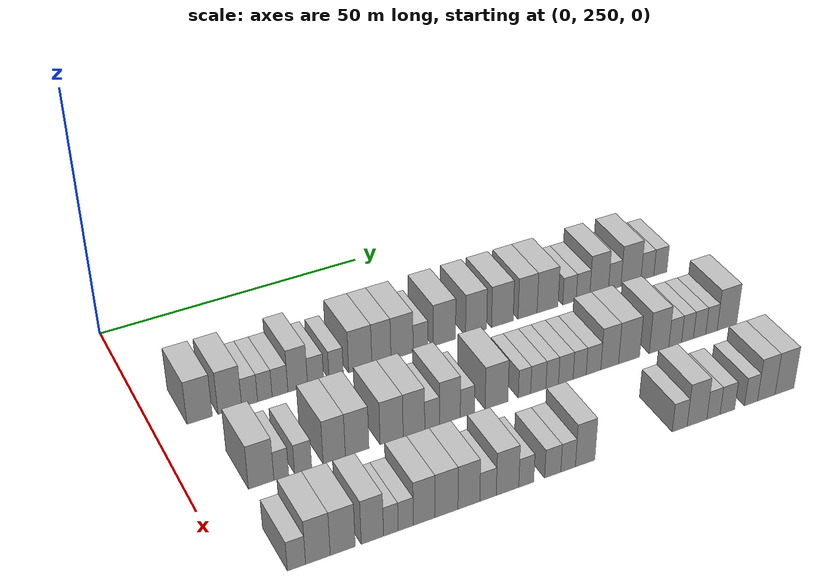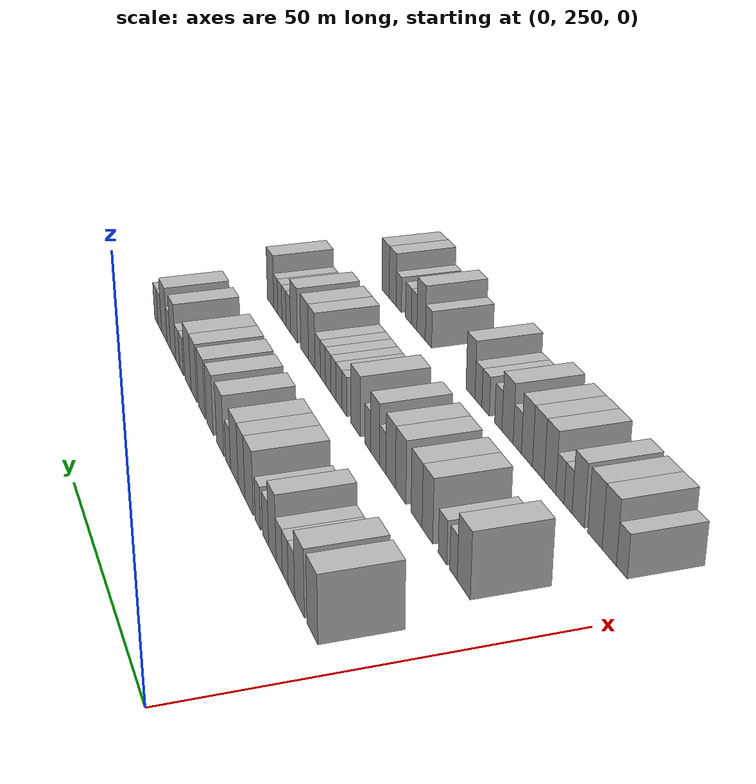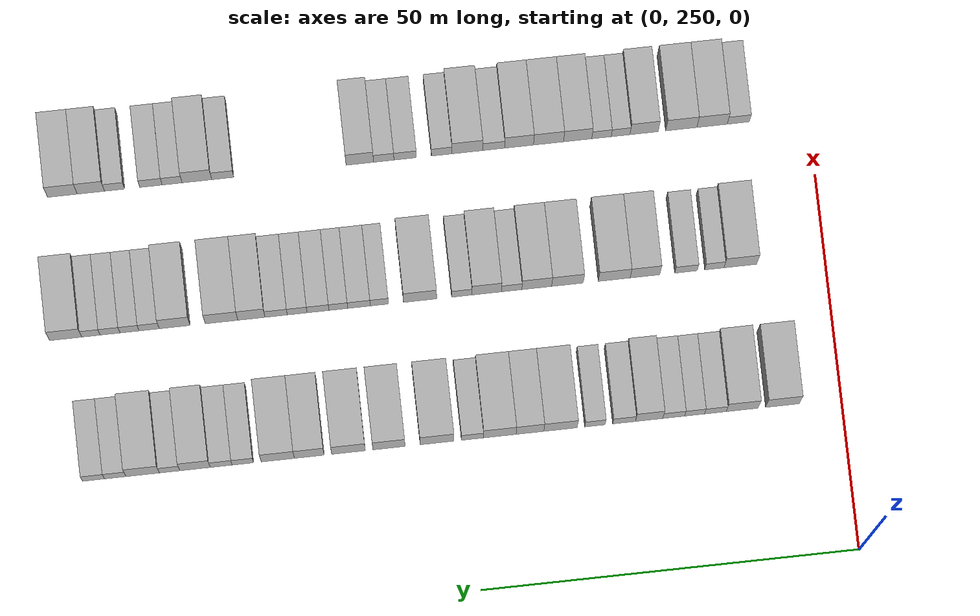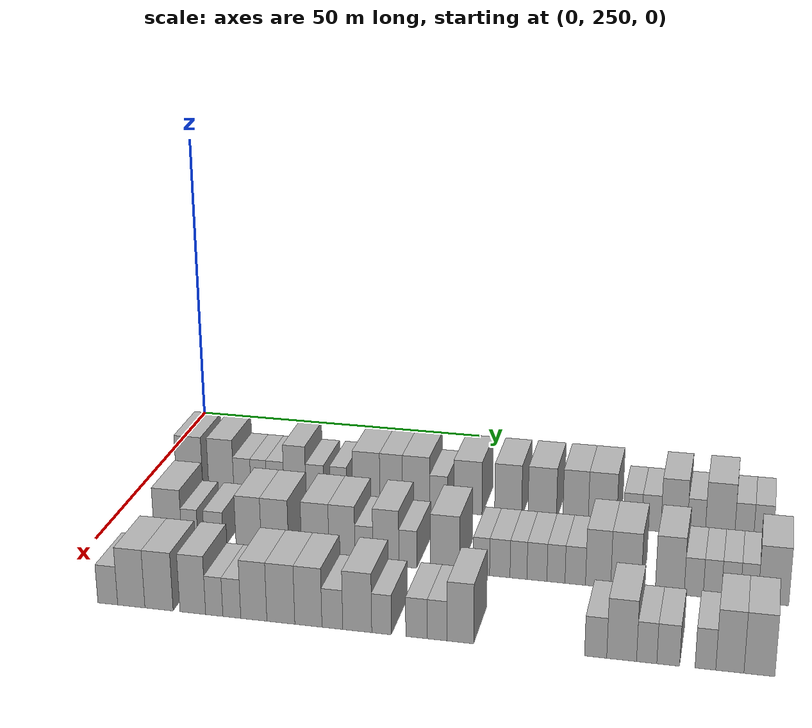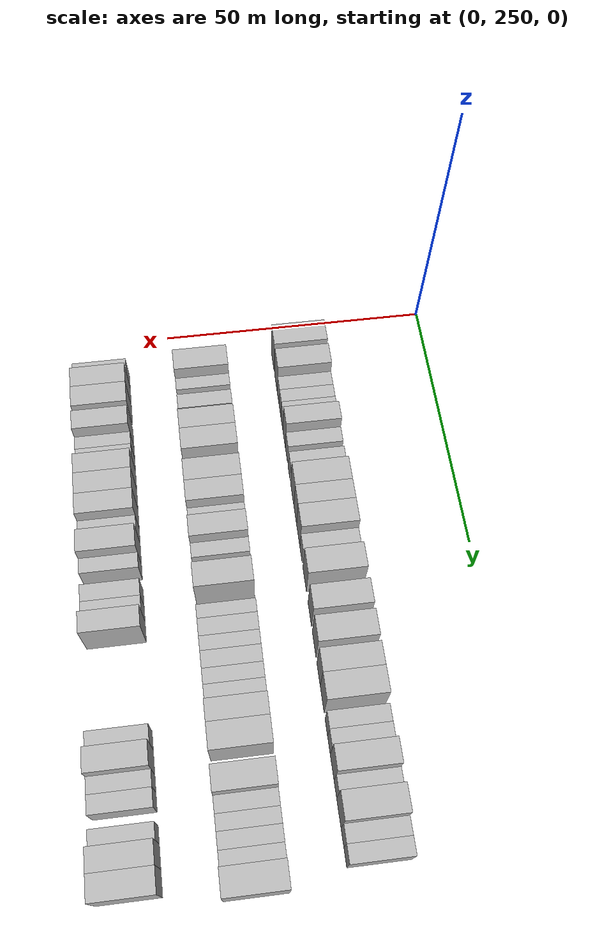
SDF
<sdf version="1.6">
 <world name="default">
  <model name="building_152">
   <static>1</static>
   <pose>25.0000 257.8896 0 0.000000 0.000000 0.000000</pose>
   <link name="link">
    <pose>0 0 4.50 0 0 0</pose>
    <collision name="collision"><geometry><box><size>10.0000 4.4660 9.0000</size></box></geometry></collision>
    <visual name="visual">
     <cast_shadows>0</cast_shadows>
     <geometry><box><size>10.0000 4.4660 9.0000</size></box></geometry>
     <material>
      <script>
       <uri>model://HANNAS_wall/materials/scripts</uri>
       <uri>model://HANNAS_wall/materials/textures</uri>
       <name>vrc/HANNAS_wall</name>
      </script>
     </material>
    </visual>
   </link>
  </model>
  <model name="building_153">
   <static>1</static>
   <pose>25.0000 263.2380 0 0.000000 0.000000 0.000000</pose>
   <link name="link">
    <pose>0 0 4.50 0 0 0</pose>
    <collision name="collision"><geometry><box><size>10.0000 4.2309 9.0000</size></box></geometry></collision>
    <visual name="visual">
     <cast_shadows>0</cast_shadows>
     <geometry><box><size>10.0000 4.2309 9.0000</size></box></geometry>
     <material>
      <script>
       <uri>model://HANNAS_wall/materials/scripts</uri>
       <uri>model://HANNAS_wall/materials/textures</uri>
       <name>vrc/HANNAS_wall</name>
      </script>
     </material>
    </visual>
   </link>
  </model>
  <model name="building_154">
   <static>1</static>
   <pose>25.0000 266.7898 0 0.000000 0.000000 0.000000</pose>
   <link name="link">
    <pose>0 0 3.00 0 0 0</pose>
    <collision name="collision"><geometry><box><size>10.0000 2.8727 6.0000</size></box></geometry></collision>
    <visual name="visual">
     <cast_shadows>0</cast_shadows>
     <geometry><box><size>10.0000 2.8727 6.0000</size></box></geometry>
     <material>
      <script>
       <uri>model://HANNAS_wall/materials/scripts</uri>
       <uri>model://HANNAS_wall/materials/textures</uri>
       <name>vrc/HANNAS_wall</name>
      </script>
     </material>
    </visual>
   </link>
  </model>
  <model name="building_155">
   <static>1</static>
   <pose>25.0000 269.5417 0 0.000000 0.000000 0.000000</pose>
   <link name="link">
    <pose>0 0 3.00 0 0 0</pose>
    <collision name="collision"><geometry><box><size>10.0000 2.6310 6.0000</size></box></geometry></collision>
    <visual name="visual">
     <cast_shadows>0</cast_shadows>
     <geometry><box><size>10.0000 2.6310 6.0000</size></box></geometry>
     <material>
      <script>
       <uri>model://HANNAS_wall/materials/scripts</uri>
       <uri>model://HANNAS_wall/materials/textures</uri>
       <name>vrc/HANNAS_wall</name>
      </script>
     </material>
    </visual>
   </link>
  </model>
  <model name="building_156">
   <static>1</static>
   <pose>25.0000 272.3061 0 0.000000 0.000000 0.000000</pose>
   <link name="link">
    <pose>0 0 3.00 0 0 0</pose>
    <collision name="collision"><geometry><box><size>10.0000 2.8977 6.0000</size></box></geometry></collision>
    <visual name="visual">
     <cast_shadows>0</cast_shadows>
     <geometry><box><size>10.0000 2.8977 6.0000</size></box></geometry>
     <material>
      <script>
       <uri>model://HANNAS_wall/materials/scripts</uri>
       <uri>model://HANNAS_wall/materials/textures</uri>
       <name>vrc/HANNAS_wall</name>
      </script>
     </material>
    </visual>
   </link>
  </model>
  <model name="building_157">
   <static>1</static>
   <pose>25.0000 275.5672 0 0.000000 0.000000 0.000000</pose>
   <link name="link">
    <pose>0 0 4.50 0 0 0</pose>
    <collision name="collision"><geometry><box><size>10.0000 3.6246 9.0000</size></box></geometry></collision>
    <visual name="visual">
     <cast_shadows>0</cast_shadows>
     <geometry><box><size>10.0000 3.6246 9.0000</size></box></geometry>
     <material>
      <script>
       <uri>model://HANNAS_wall/materials/scripts</uri>
       <uri>model://HANNAS_wall/materials/textures</uri>
       <name>vrc/HANNAS_wall</name>
      </script>
     </material>
    </visual>
   </link>
  </model>
  <model name="building_158">
   <static>1</static>
   <pose>25.0000 278.8790 0 0.000000 0.000000 0.000000</pose>
   <link name="link">
    <pose>0 0 3.00 0 0 0</pose>
    <collision name="collision"><geometry><box><size>10.0000 2.9989 6.0000</size></box></geometry></collision>
    <visual name="visual">
     <cast_shadows>0</cast_shadows>
     <geometry><box><size>10.0000 2.9989 6.0000</size></box></geometry>
     <material>
      <script>
       <uri>model://HANNAS_wall/materials/scripts</uri>
       <uri>model://HANNAS_wall/materials/textures</uri>
       <name>vrc/HANNAS_wall</name>
      </script>
     </material>
    </visual>
   </link>
  </model>
  <model name="building_159">
   <static>1</static>
   <pose>25.0000 282.7313 0 0.000000 0.000000 0.000000</pose>
   <link name="link">
    <pose>0 0 3.00 0 0 0</pose>
    <collision name="collision"><geometry><box><size>10.0000 2.7057 6.0000</size></box></geometry></collision>
    <visual name="visual">
     <cast_shadows>0</cast_shadows>
     <geometry><box><size>10.0000 2.7057 6.0000</size></box></geometry>
     <material>
      <script>
       <uri>model://HANNAS_wall/materials/scripts</uri>
       <uri>model://HANNAS_wall/materials/textures</uri>
       <name>vrc/HANNAS_wall</name>
      </script>
     </material>
    </visual>
   </link>
  </model>
  <model name="building_160">
   <static>1</static>
   <pose>25.0000 287.2923 0 0.000000 0.000000 0.000000</pose>
   <link name="link">
    <pose>0 0 4.50 0 0 0</pose>
    <collision name="collision"><geometry><box><size>10.0000 4.4163 9.0000</size></box></geometry></collision>
    <visual name="visual">
     <cast_shadows>0</cast_shadows>
     <geometry><box><size>10.0000 4.4163 9.0000</size></box></geometry>
     <material>
      <script>
       <uri>model://HANNAS_wall/materials/scripts</uri>
       <uri>model://HANNAS_wall/materials/textures</uri>
       <name>vrc/HANNAS_wall</name>
      </script>
     </material>
    </visual>
   </link>
  </model>
  <model name="building_161">
   <static>1</static>
   <pose>25.0000 291.3336 0 0.000000 0.000000 0.000000</pose>
   <link name="link">
    <pose>0 0 4.50 0 0 0</pose>
    <collision name="collision"><geometry><box><size>10.0000 3.6663 9.0000</size></box></geometry></collision>
    <visual name="visual">
     <cast_shadows>0</cast_shadows>
     <geometry><box><size>10.0000 3.6663 9.0000</size></box></geometry>
     <material>
      <script>
       <uri>model://HANNAS_wall/materials/scripts</uri>
       <uri>model://HANNAS_wall/materials/textures</uri>
       <name>vrc/HANNAS_wall</name>
      </script>
     </material>
    </visual>
   </link>
  </model>
  <model name="building_162">
   <static>1</static>
   <pose>25.0000 295.3309 0 0.000000 0.000000 0.000000</pose>
   <link name="link">
    <pose>0 0 4.50 0 0 0</pose>
    <collision name="collision"><geometry><box><size>10.0000 4.3283 9.0000</size></box></geometry></collision>
    <visual name="visual">
     <cast_shadows>0</cast_shadows>
     <geometry><box><size>10.0000 4.3283 9.0000</size></box></geometry>
     <material>
      <script>
       <uri>model://HANNAS_wall/materials/scripts</uri>
       <uri>model://HANNAS_wall/materials/textures</uri>
       <name>vrc/HANNAS_wall</name>
      </script>
     </material>
    </visual>
   </link>
  </model>
  <model name="building_163">
   <static>1</static>
   <pose>25.0000 298.9459 0 0.000000 0.000000 0.000000</pose>
   <link name="link">
    <pose>0 0 3.00 0 0 0</pose>
    <collision name="collision"><geometry><box><size>10.0000 2.9016 6.0000</size></box></geometry></collision>
    <visual name="visual">
     <cast_shadows>0</cast_shadows>
     <geometry><box><size>10.0000 2.9016 6.0000</size></box></geometry>
     <material>
      <script>
       <uri>model://HANNAS_wall/materials/scripts</uri>
       <uri>model://HANNAS_wall/materials/textures</uri>
       <name>vrc/HANNAS_wall</name>
      </script>
     </material>
    </visual>
   </link>
  </model>
  <model name="building_164">
   <static>1</static>
   <pose>25.0000 303.6295 0 0.000000 0.000000 0.000000</pose>
   <link name="link">
    <pose>0 0 4.50 0 0 0</pose>
    <collision name="collision"><geometry><box><size>10.0000 4.4657 9.0000</size></box></geometry></collision>
    <visual name="visual">
     <cast_shadows>0</cast_shadows>
     <geometry><box><size>10.0000 4.4657 9.0000</size></box></geometry>
     <material>
      <script>
       <uri>model://HANNAS_wall/materials/scripts</uri>
       <uri>model://HANNAS_wall/materials/textures</uri>
       <name>vrc/HANNAS_wall</name>
      </script>
     </material>
    </visual>
   </link>
  </model>
  <model name="building_165">
   <static>1</static>
   <pose>25.0000 309.9881 0 0.000000 0.000000 0.000000</pose>
   <link name="link">
    <pose>0 0 4.50 0 0 0</pose>
    <collision name="collision"><geometry><box><size>10.0000 4.2514 9.0000</size></box></geometry></collision>
    <visual name="visual">
     <cast_shadows>0</cast_shadows>
     <geometry><box><size>10.0000 4.2514 9.0000</size></box></geometry>
     <material>
      <script>
       <uri>model://HANNAS_wall/materials/scripts</uri>
       <uri>model://HANNAS_wall/materials/textures</uri>
       <name>vrc/HANNAS_wall</name>
      </script>
     </material>
    </visual>
   </link>
  </model>
  <model name="building_166">
   <static>1</static>
   <pose>25.0000 315.3311 0 0.000000 0.000000 0.000000</pose>
   <link name="link">
    <pose>0 0 4.50 0 0 0</pose>
    <collision name="collision"><geometry><box><size>10.0000 4.4346 9.0000</size></box></geometry></collision>
    <visual name="visual">
     <cast_shadows>0</cast_shadows>
     <geometry><box><size>10.0000 4.4346 9.0000</size></box></geometry>
     <material>
      <script>
       <uri>model://HANNAS_wall/materials/scripts</uri>
       <uri>model://HANNAS_wall/materials/textures</uri>
       <name>vrc/HANNAS_wall</name>
      </script>
     </material>
    </visual>
   </link>
  </model>
  <model name="building_167">
   <static>1</static>
   <pose>25.0000 320.5160 0 0.000000 0.000000 0.000000</pose>
   <link name="link">
    <pose>0 0 4.50 0 0 0</pose>
    <collision name="collision"><geometry><box><size>10.0000 3.9352 9.0000</size></box></geometry></collision>
    <visual name="visual">
     <cast_shadows>0</cast_shadows>
     <geometry><box><size>10.0000 3.9352 9.0000</size></box></geometry>
     <material>
      <script>
       <uri>model://HANNAS_wall/materials/scripts</uri>
       <uri>model://HANNAS_wall/materials/textures</uri>
       <name>vrc/HANNAS_wall</name>
      </script>
     </material>
    </visual>
   </link>
  </model>
  <model name="building_168">
   <static>1</static>
   <pose>25.0000 324.6832 0 0.000000 0.000000 0.000000</pose>
   <link name="link">
    <pose>0 0 4.50 0 0 0</pose>
    <collision name="collision"><geometry><box><size>10.0000 4.3991 9.0000</size></box></geometry></collision>
    <visual name="visual">
     <cast_shadows>0</cast_shadows>
     <geometry><box><size>10.0000 4.3991 9.0000</size></box></geometry>
     <material>
      <script>
       <uri>model://HANNAS_wall/materials/scripts</uri>
       <uri>model://HANNAS_wall/materials/textures</uri>
       <name>vrc/HANNAS_wall</name>
      </script>
     </material>
    </visual>
   </link>
  </model>
  <model name="building_169">
   <static>1</static>
   <pose>25.0000 329.2970 0 0.000000 0.000000 0.000000</pose>
   <link name="link">
    <pose>0 0 3.00 0 0 0</pose>
    <collision name="collision"><geometry><box><size>10.0000 2.8285 6.0000</size></box></geometry></collision>
    <visual name="visual">
     <cast_shadows>0</cast_shadows>
     <geometry><box><size>10.0000 2.8285 6.0000</size></box></geometry>
     <material>
      <script>
       <uri>model://HANNAS_wall/materials/scripts</uri>
       <uri>model://HANNAS_wall/materials/textures</uri>
       <name>vrc/HANNAS_wall</name>
      </script>
     </material>
    </visual>
   </link>
  </model>
  <model name="building_170">
   <static>1</static>
   <pose>25.0000 332.1664 0 0.000000 0.000000 0.000000</pose>
   <link name="link">
    <pose>0 0 3.00 0 0 0</pose>
    <collision name="collision"><geometry><box><size>10.0000 2.9102 6.0000</size></box></geometry></collision>
    <visual name="visual">
     <cast_shadows>0</cast_shadows>
     <geometry><box><size>10.0000 2.9102 6.0000</size></box></geometry>
     <material>
      <script>
       <uri>model://HANNAS_wall/materials/scripts</uri>
       <uri>model://HANNAS_wall/materials/textures</uri>
       <name>vrc/HANNAS_wall</name>
      </script>
     </material>
    </visual>
   </link>
  </model>
  <model name="building_171">
   <static>1</static>
   <pose>25.0000 335.6250 0 0.000000 0.000000 0.000000</pose>
   <link name="link">
    <pose>0 0 4.50 0 0 0</pose>
    <collision name="collision"><geometry><box><size>10.0000 4.0071 9.0000</size></box></geometry></collision>
    <visual name="visual">
     <cast_shadows>0</cast_shadows>
     <geometry><box><size>10.0000 4.0071 9.0000</size></box></geometry>
     <material>
      <script>
       <uri>model://HANNAS_wall/materials/scripts</uri>
       <uri>model://HANNAS_wall/materials/textures</uri>
       <name>vrc/HANNAS_wall</name>
      </script>
     </material>
    </visual>
   </link>
  </model>
  <model name="building_172">
   <static>1</static>
   <pose>25.0000 338.9838 0 0.000000 0.000000 0.000000</pose>
   <link name="link">
    <pose>0 0 3.00 0 0 0</pose>
    <collision name="collision"><geometry><box><size>10.0000 2.7105 6.0000</size></box></geometry></collision>
    <visual name="visual">
     <cast_shadows>0</cast_shadows>
     <geometry><box><size>10.0000 2.7105 6.0000</size></box></geometry>
     <material>
      <script>
       <uri>model://HANNAS_wall/materials/scripts</uri>
       <uri>model://HANNAS_wall/materials/textures</uri>
       <name>vrc/HANNAS_wall</name>
      </script>
     </material>
    </visual>
   </link>
  </model>
  <model name="building_173">
   <static>1</static>
   <pose>25.0000 342.5417 0 0.000000 0.000000 0.000000</pose>
   <link name="link">
    <pose>0 0 4.50 0 0 0</pose>
    <collision name="collision"><geometry><box><size>10.0000 4.4052 9.0000</size></box></geometry></collision>
    <visual name="visual">
     <cast_shadows>0</cast_shadows>
     <geometry><box><size>10.0000 4.4052 9.0000</size></box></geometry>
     <material>
      <script>
       <uri>model://HANNAS_wall/materials/scripts</uri>
       <uri>model://HANNAS_wall/materials/textures</uri>
       <name>vrc/HANNAS_wall</name>
      </script>
     </material>
    </visual>
   </link>
  </model>
  <model name="building_174">
   <static>1</static>
   <pose>25.0000 346.1648 0 0.000000 0.000000 0.000000</pose>
   <link name="link">
    <pose>0 0 3.00 0 0 0</pose>
    <collision name="collision"><geometry><box><size>10.0000 2.8411 6.0000</size></box></geometry></collision>
    <visual name="visual">
     <cast_shadows>0</cast_shadows>
     <geometry><box><size>10.0000 2.8411 6.0000</size></box></geometry>
     <material>
      <script>
       <uri>model://HANNAS_wall/materials/scripts</uri>
       <uri>model://HANNAS_wall/materials/textures</uri>
       <name>vrc/HANNAS_wall</name>
      </script>
     </material>
    </visual>
   </link>
  </model>
  <model name="building_175">
   <static>1</static>
   <pose>25.0000 349.0305 0 0.000000 0.000000 0.000000</pose>
   <link name="link">
    <pose>0 0 3.00 0 0 0</pose>
    <collision name="collision"><geometry><box><size>10.0000 2.8903 6.0000</size></box></geometry></collision>
    <visual name="visual">
     <cast_shadows>0</cast_shadows>
     <geometry><box><size>10.0000 2.8903 6.0000</size></box></geometry>
     <material>
      <script>
       <uri>model://HANNAS_wall/materials/scripts</uri>
       <uri>model://HANNAS_wall/materials/textures</uri>
       <name>vrc/HANNAS_wall</name>
      </script>
     </material>
    </visual>
   </link>
  </model>
  <model name="building_335">
   <static>1</static>
   <pose>44.0000 261.3014 0 0.000000 0.000000 0.000000</pose>
   <link name="link">
    <pose>0 0 4.50 0 0 0</pose>
    <collision name="collision"><geometry><box><size>10.0000 4.3520 9.0000</size></box></geometry></collision>
    <visual name="visual">
     <cast_shadows>0</cast_shadows>
     <geometry><box><size>10.0000 4.3520 9.0000</size></box></geometry>
     <material>
      <script>
       <uri>model://HANNAS_wall/materials/scripts</uri>
       <uri>model://HANNAS_wall/materials/textures</uri>
       <name>vrc/HANNAS_wall</name>
      </script>
     </material>
    </visual>
   </link>
  </model>
  <model name="building_336">
   <static>1</static>
   <pose>44.0000 264.7501 0 0.000000 0.000000 0.000000</pose>
   <link name="link">
    <pose>0 0 3.00 0 0 0</pose>
    <collision name="collision"><geometry><box><size>10.0000 2.5453 6.0000</size></box></geometry></collision>
    <visual name="visual">
     <cast_shadows>0</cast_shadows>
     <geometry><box><size>10.0000 2.5453 6.0000</size></box></geometry>
     <material>
      <script>
       <uri>model://HANNAS_wall/materials/scripts</uri>
       <uri>model://HANNAS_wall/materials/textures</uri>
       <name>vrc/HANNAS_wall</name>
      </script>
     </material>
    </visual>
   </link>
  </model>
  <model name="building_337">
   <static>1</static>
   <pose>44.0000 268.5173 0 0.000000 0.000000 0.000000</pose>
   <link name="link">
    <pose>0 0 3.00 0 0 0</pose>
    <collision name="collision"><geometry><box><size>10.0000 2.9891 6.0000</size></box></geometry></collision>
    <visual name="visual">
     <cast_shadows>0</cast_shadows>
     <geometry><box><size>10.0000 2.9891 6.0000</size></box></geometry>
     <material>
      <script>
       <uri>model://HANNAS_wall/materials/scripts</uri>
       <uri>model://HANNAS_wall/materials/textures</uri>
       <name>vrc/HANNAS_wall</name>
      </script>
     </material>
    </visual>
   </link>
  </model>
  <model name="building_338">
   <static>1</static>
   <pose>44.0000 273.9746 0 0.000000 0.000000 0.000000</pose>
   <link name="link">
    <pose>0 0 4.50 0 0 0</pose>
    <collision name="collision"><geometry><box><size>10.0000 3.9256 9.0000</size></box></geometry></collision>
    <visual name="visual">
     <cast_shadows>0</cast_shadows>
     <geometry><box><size>10.0000 3.9256 9.0000</size></box></geometry>
     <material>
      <script>
       <uri>model://HANNAS_wall/materials/scripts</uri>
       <uri>model://HANNAS_wall/materials/textures</uri>
       <name>vrc/HANNAS_wall</name>
      </script>
     </material>
    </visual>
   </link>
  </model>
  <model name="building_339">
   <static>1</static>
   <pose>44.0000 278.0499 0 0.000000 0.000000 0.000000</pose>
   <link name="link">
    <pose>0 0 4.50 0 0 0</pose>
    <collision name="collision"><geometry><box><size>10.0000 4.2251 9.0000</size></box></geometry></collision>
    <visual name="visual">
     <cast_shadows>0</cast_shadows>
     <geometry><box><size>10.0000 4.2251 9.0000</size></box></geometry>
     <material>
      <script>
       <uri>model://HANNAS_wall/materials/scripts</uri>
       <uri>model://HANNAS_wall/materials/textures</uri>
       <name>vrc/HANNAS_wall</name>
      </script>
     </material>
    </visual>
   </link>
  </model>
  <model name="building_340">
   <static>1</static>
   <pose>44.0000 284.2600 0 0.000000 0.000000 0.000000</pose>
   <link name="link">
    <pose>0 0 4.50 0 0 0</pose>
    <collision name="collision"><geometry><box><size>10.0000 4.1950 9.0000</size></box></geometry></collision>
    <visual name="visual">
     <cast_shadows>0</cast_shadows>
     <geometry><box><size>10.0000 4.1950 9.0000</size></box></geometry>
     <material>
      <script>
       <uri>model://HANNAS_wall/materials/scripts</uri>
       <uri>model://HANNAS_wall/materials/textures</uri>
       <name>vrc/HANNAS_wall</name>
      </script>
     </material>
    </visual>
   </link>
  </model>
  <model name="building_341">
   <static>1</static>
   <pose>44.0000 288.3390 0 0.000000 0.000000 0.000000</pose>
   <link name="link">
    <pose>0 0 4.50 0 0 0</pose>
    <collision name="collision"><geometry><box><size>10.0000 3.9630 9.0000</size></box></geometry></collision>
    <visual name="visual">
     <cast_shadows>0</cast_shadows>
     <geometry><box><size>10.0000 3.9630 9.0000</size></box></geometry>
     <material>
      <script>
       <uri>model://HANNAS_wall/materials/scripts</uri>
       <uri>model://HANNAS_wall/materials/textures</uri>
       <name>vrc/HANNAS_wall</name>
      </script>
     </material>
    </visual>
   </link>
  </model>
  <model name="building_342">
   <static>1</static>
   <pose>44.0000 291.6717 0 0.000000 0.000000 0.000000</pose>
   <link name="link">
    <pose>0 0 3.00 0 0 0</pose>
    <collision name="collision"><geometry><box><size>10.0000 2.7025 6.0000</size></box></geometry></collision>
    <visual name="visual">
     <cast_shadows>0</cast_shadows>
     <geometry><box><size>10.0000 2.7025 6.0000</size></box></geometry>
     <material>
      <script>
       <uri>model://HANNAS_wall/materials/scripts</uri>
       <uri>model://HANNAS_wall/materials/textures</uri>
       <name>vrc/HANNAS_wall</name>
      </script>
     </material>
    </visual>
   </link>
  </model>
  <model name="building_343">
   <static>1</static>
   <pose>44.0000 294.9807 0 0.000000 0.000000 0.000000</pose>
   <link name="link">
    <pose>0 0 4.50 0 0 0</pose>
    <collision name="collision"><geometry><box><size>10.0000 3.9155 9.0000</size></box></geometry></collision>
    <visual name="visual">
     <cast_shadows>0</cast_shadows>
     <geometry><box><size>10.0000 3.9155 9.0000</size></box></geometry>
     <material>
      <script>
       <uri>model://HANNAS_wall/materials/scripts</uri>
       <uri>model://HANNAS_wall/materials/textures</uri>
       <name>vrc/HANNAS_wall</name>
      </script>
     </material>
    </visual>
   </link>
  </model>
  <model name="building_344">
   <static>1</static>
   <pose>44.0000 298.2829 0 0.000000 0.000000 0.000000</pose>
   <link name="link">
    <pose>0 0 3.00 0 0 0</pose>
    <collision name="collision"><geometry><box><size>10.0000 2.6888 6.0000</size></box></geometry></collision>
    <visual name="visual">
     <cast_shadows>0</cast_shadows>
     <geometry><box><size>10.0000 2.6888 6.0000</size></box></geometry>
     <material>
      <script>
       <uri>model://HANNAS_wall/materials/scripts</uri>
       <uri>model://HANNAS_wall/materials/textures</uri>
       <name>vrc/HANNAS_wall</name>
      </script>
     </material>
    </visual>
   </link>
  </model>
  <model name="building_345">
   <static>1</static>
   <pose>44.0000 303.8205 0 0.000000 0.000000 0.000000</pose>
   <link name="link">
    <pose>0 0 4.50 0 0 0</pose>
    <collision name="collision"><geometry><box><size>10.0000 4.3864 9.0000</size></box></geometry></collision>
    <visual name="visual">
     <cast_shadows>0</cast_shadows>
     <geometry><box><size>10.0000 4.3864 9.0000</size></box></geometry>
     <material>
      <script>
       <uri>model://HANNAS_wall/materials/scripts</uri>
       <uri>model://HANNAS_wall/materials/textures</uri>
       <name>vrc/HANNAS_wall</name>
      </script>
     </material>
    </visual>
   </link>
  </model>
  <model name="building_346">
   <static>1</static>
   <pose>44.0000 309.2150 0 0.000000 0.000000 0.000000</pose>
   <link name="link">
    <pose>0 0 3.00 0 0 0</pose>
    <collision name="collision"><geometry><box><size>10.0000 2.4026 6.0000</size></box></geometry></collision>
    <visual name="visual">
     <cast_shadows>0</cast_shadows>
     <geometry><box><size>10.0000 2.4026 6.0000</size></box></geometry>
     <material>
      <script>
       <uri>model://HANNAS_wall/materials/scripts</uri>
       <uri>model://HANNAS_wall/materials/textures</uri>
       <name>vrc/HANNAS_wall</name>
      </script>
     </material>
    </visual>
   </link>
  </model>
  <model name="building_347">
   <static>1</static>
   <pose>44.0000 311.9154 0 0.000000 0.000000 0.000000</pose>
   <link name="link">
    <pose>0 0 3.00 0 0 0</pose>
    <collision name="collision"><geometry><box><size>10.0000 2.9984 6.0000</size></box></geometry></collision>
    <visual name="visual">
     <cast_shadows>0</cast_shadows>
     <geometry><box><size>10.0000 2.9984 6.0000</size></box></geometry>
     <material>
      <script>
       <uri>model://HANNAS_wall/materials/scripts</uri>
       <uri>model://HANNAS_wall/materials/textures</uri>
       <name>vrc/HANNAS_wall</name>
      </script>
     </material>
    </visual>
   </link>
  </model>
  <model name="building_348">
   <static>1</static>
   <pose>44.0000 314.6530 0 0.000000 0.000000 0.000000</pose>
   <link name="link">
    <pose>0 0 3.00 0 0 0</pose>
    <collision name="collision"><geometry><box><size>10.0000 2.4767 6.0000</size></box></geometry></collision>
    <visual name="visual">
     <cast_shadows>0</cast_shadows>
     <geometry><box><size>10.0000 2.4767 6.0000</size></box></geometry>
     <material>
      <script>
       <uri>model://HANNAS_wall/materials/scripts</uri>
       <uri>model://HANNAS_wall/materials/textures</uri>
       <name>vrc/HANNAS_wall</name>
      </script>
     </material>
    </visual>
   </link>
  </model>
  <model name="building_349">
   <static>1</static>
   <pose>44.0000 317.3443 0 0.000000 0.000000 0.000000</pose>
   <link name="link">
    <pose>0 0 3.00 0 0 0</pose>
    <collision name="collision"><geometry><box><size>10.0000 2.9060 6.0000</size></box></geometry></collision>
    <visual name="visual">
     <cast_shadows>0</cast_shadows>
     <geometry><box><size>10.0000 2.9060 6.0000</size></box></geometry>
     <material>
      <script>
       <uri>model://HANNAS_wall/materials/scripts</uri>
       <uri>model://HANNAS_wall/materials/textures</uri>
       <name>vrc/HANNAS_wall</name>
      </script>
     </material>
    </visual>
   </link>
  </model>
  <model name="building_350">
   <static>1</static>
   <pose>44.0000 320.1047 0 0.000000 0.000000 0.000000</pose>
   <link name="link">
    <pose>0 0 3.00 0 0 0</pose>
    <collision name="collision"><geometry><box><size>10.0000 2.6148 6.0000</size></box></geometry></collision>
    <visual name="visual">
     <cast_shadows>0</cast_shadows>
     <geometry><box><size>10.0000 2.6148 6.0000</size></box></geometry>
     <material>
      <script>
       <uri>model://HANNAS_wall/materials/scripts</uri>
       <uri>model://HANNAS_wall/materials/textures</uri>
       <name>vrc/HANNAS_wall</name>
      </script>
     </material>
    </visual>
   </link>
  </model>
  <model name="building_351">
   <static>1</static>
   <pose>44.0000 322.8916 0 0.000000 0.000000 0.000000</pose>
   <link name="link">
    <pose>0 0 3.00 0 0 0</pose>
    <collision name="collision"><geometry><box><size>10.0000 2.9589 6.0000</size></box></geometry></collision>
    <visual name="visual">
     <cast_shadows>0</cast_shadows>
     <geometry><box><size>10.0000 2.9589 6.0000</size></box></geometry>
     <material>
      <script>
       <uri>model://HANNAS_wall/materials/scripts</uri>
       <uri>model://HANNAS_wall/materials/textures</uri>
       <name>vrc/HANNAS_wall</name>
      </script>
     </material>
    </visual>
   </link>
  </model>
  <model name="building_352">
   <static>1</static>
   <pose>44.0000 326.1762 0 0.000000 0.000000 0.000000</pose>
   <link name="link">
    <pose>0 0 4.50 0 0 0</pose>
    <collision name="collision"><geometry><box><size>10.0000 3.6104 9.0000</size></box></geometry></collision>
    <visual name="visual">
     <cast_shadows>0</cast_shadows>
     <geometry><box><size>10.0000 3.6104 9.0000</size></box></geometry>
     <material>
      <script>
       <uri>model://HANNAS_wall/materials/scripts</uri>
       <uri>model://HANNAS_wall/materials/textures</uri>
       <name>vrc/HANNAS_wall</name>
      </script>
     </material>
    </visual>
   </link>
  </model>
  <model name="building_353">
   <static>1</static>
   <pose>44.0000 330.1451 0 0.000000 0.000000 0.000000</pose>
   <link name="link">
    <pose>0 0 4.50 0 0 0</pose>
    <collision name="collision"><geometry><box><size>10.0000 4.3275 9.0000</size></box></geometry></collision>
    <visual name="visual">
     <cast_shadows>0</cast_shadows>
     <geometry><box><size>10.0000 4.3275 9.0000</size></box></geometry>
     <material>
      <script>
       <uri>model://HANNAS_wall/materials/scripts</uri>
       <uri>model://HANNAS_wall/materials/textures</uri>
       <name>vrc/HANNAS_wall</name>
      </script>
     </material>
    </visual>
   </link>
  </model>
  <model name="building_354">
   <static>1</static>
   <pose>44.0000 336.3506 0 0.000000 0.000000 0.000000</pose>
   <link name="link">
    <pose>0 0 4.50 0 0 0</pose>
    <collision name="collision"><geometry><box><size>10.0000 4.0834 9.0000</size></box></geometry></collision>
    <visual name="visual">
     <cast_shadows>0</cast_shadows>
     <geometry><box><size>10.0000 4.0834 9.0000</size></box></geometry>
     <material>
      <script>
       <uri>model://HANNAS_wall/materials/scripts</uri>
       <uri>model://HANNAS_wall/materials/textures</uri>
       <name>vrc/HANNAS_wall</name>
      </script>
     </material>
    </visual>
   </link>
  </model>
  <model name="building_355">
   <static>1</static>
   <pose>44.0000 339.7278 0 0.000000 0.000000 0.000000</pose>
   <link name="link">
    <pose>0 0 3.00 0 0 0</pose>
    <collision name="collision"><geometry><box><size>10.0000 2.6710 6.0000</size></box></geometry></collision>
    <visual name="visual">
     <cast_shadows>0</cast_shadows>
     <geometry><box><size>10.0000 2.6710 6.0000</size></box></geometry>
     <material>
      <script>
       <uri>model://HANNAS_wall/materials/scripts</uri>
       <uri>model://HANNAS_wall/materials/textures</uri>
       <name>vrc/HANNAS_wall</name>
      </script>
     </material>
    </visual>
   </link>
  </model>
  <model name="building_356">
   <static>1</static>
   <pose>44.0000 342.3290 0 0.000000 0.000000 0.000000</pose>
   <link name="link">
    <pose>0 0 3.00 0 0 0</pose>
    <collision name="collision"><geometry><box><size>10.0000 2.5314 6.0000</size></box></geometry></collision>
    <visual name="visual">
     <cast_shadows>0</cast_shadows>
     <geometry><box><size>10.0000 2.5314 6.0000</size></box></geometry>
     <material>
      <script>
       <uri>model://HANNAS_wall/materials/scripts</uri>
       <uri>model://HANNAS_wall/materials/textures</uri>
       <name>vrc/HANNAS_wall</name>
      </script>
     </material>
    </visual>
   </link>
  </model>
  <model name="building_357">
   <static>1</static>
   <pose>44.0000 344.9046 0 0.000000 0.000000 0.000000</pose>
   <link name="link">
    <pose>0 0 3.00 0 0 0</pose>
    <collision name="collision"><geometry><box><size>10.0000 2.6199 6.0000</size></box></geometry></collision>
    <visual name="visual">
     <cast_shadows>0</cast_shadows>
     <geometry><box><size>10.0000 2.6199 6.0000</size></box></geometry>
     <material>
      <script>
       <uri>model://HANNAS_wall/materials/scripts</uri>
       <uri>model://HANNAS_wall/materials/textures</uri>
       <name>vrc/HANNAS_wall</name>
      </script>
     </material>
    </visual>
   </link>
  </model>
  <model name="building_358">
   <static>1</static>
   <pose>44.0000 347.4434 0 0.000000 0.000000 0.000000</pose>
   <link name="link">
    <pose>0 0 3.00 0 0 0</pose>
    <collision name="collision"><geometry><box><size>10.0000 2.4576 6.0000</size></box></geometry></collision>
    <visual name="visual">
     <cast_shadows>0</cast_shadows>
     <geometry><box><size>10.0000 2.4576 6.0000</size></box></geometry>
     <material>
      <script>
       <uri>model://HANNAS_wall/materials/scripts</uri>
       <uri>model://HANNAS_wall/materials/textures</uri>
       <name>vrc/HANNAS_wall</name>
      </script>
     </material>
    </visual>
   </link>
  </model>
  <model name="building_359">
   <static>1</static>
   <pose>44.0000 350.7960 0 0.000000 0.000000 0.000000</pose>
   <link name="link">
    <pose>0 0 4.50 0 0 0</pose>
    <collision name="collision"><geometry><box><size>10.0000 4.2476 9.0000</size></box></geometry></collision>
    <visual name="visual">
     <cast_shadows>0</cast_shadows>
     <geometry><box><size>10.0000 4.2476 9.0000</size></box></geometry>
     <material>
      <script>
       <uri>model://HANNAS_wall/materials/scripts</uri>
       <uri>model://HANNAS_wall/materials/textures</uri>
       <name>vrc/HANNAS_wall</name>
      </script>
     </material>
    </visual>
   </link>
  </model>
  <model name="building_507">
   <static>1</static>
   <pose>63.0000 259.3998 0 0.000000 0.000000 0.000000</pose>
   <link name="link">
    <pose>0 0 3.00 0 0 0</pose>
    <collision name="collision"><geometry><box><size>10.0000 2.9555 6.0000</size></box></geometry></collision>
    <visual name="visual">
     <cast_shadows>0</cast_shadows>
     <geometry><box><size>10.0000 2.9555 6.0000</size></box></geometry>
     <material>
      <script>
       <uri>model://HANNAS_wall/materials/scripts</uri>
       <uri>model://HANNAS_wall/materials/textures</uri>
       <name>vrc/HANNAS_wall</name>
      </script>
     </material>
    </visual>
   </link>
  </model>
  <model name="building_508">
   <static>1</static>
   <pose>63.0000 262.8964 0 0.000000 0.000000 0.000000</pose>
   <link name="link">
    <pose>0 0 4.50 0 0 0</pose>
    <collision name="collision"><geometry><box><size>10.0000 4.0378 9.0000</size></box></geometry></collision>
    <visual name="visual">
     <cast_shadows>0</cast_shadows>
     <geometry><box><size>10.0000 4.0378 9.0000</size></box></geometry>
     <material>
      <script>
       <uri>model://HANNAS_wall/materials/scripts</uri>
       <uri>model://HANNAS_wall/materials/textures</uri>
       <name>vrc/HANNAS_wall</name>
      </script>
     </material>
    </visual>
   </link>
  </model>
  <model name="building_509">
   <static>1</static>
   <pose>63.0000 266.9933 0 0.000000 0.000000 0.000000</pose>
   <link name="link">
    <pose>0 0 4.50 0 0 0</pose>
    <collision name="collision"><geometry><box><size>10.0000 4.1559 9.0000</size></box></geometry></collision>
    <visual name="visual">
     <cast_shadows>0</cast_shadows>
     <geometry><box><size>10.0000 4.1559 9.0000</size></box></geometry>
     <material>
      <script>
       <uri>model://HANNAS_wall/materials/scripts</uri>
       <uri>model://HANNAS_wall/materials/textures</uri>
       <name>vrc/HANNAS_wall</name>
      </script>
     </material>
    </visual>
   </link>
  </model>
  <model name="building_510">
   <static>1</static>
   <pose>63.0000 271.9474 0 0.000000 0.000000 0.000000</pose>
   <link name="link">
    <pose>0 0 4.50 0 0 0</pose>
    <collision name="collision"><geometry><box><size>10.0000 3.7522 9.0000</size></box></geometry></collision>
    <visual name="visual">
     <cast_shadows>0</cast_shadows>
     <geometry><box><size>10.0000 3.7522 9.0000</size></box></geometry>
     <material>
      <script>
       <uri>model://HANNAS_wall/materials/scripts</uri>
       <uri>model://HANNAS_wall/materials/textures</uri>
       <name>vrc/HANNAS_wall</name>
      </script>
     </material>
    </visual>
   </link>
  </model>
  <model name="building_511">
   <static>1</static>
   <pose>63.0000 275.0724 0 0.000000 0.000000 0.000000</pose>
   <link name="link">
    <pose>0 0 3.00 0 0 0</pose>
    <collision name="collision"><geometry><box><size>10.0000 2.4977 6.0000</size></box></geometry></collision>
    <visual name="visual">
     <cast_shadows>0</cast_shadows>
     <geometry><box><size>10.0000 2.4977 6.0000</size></box></geometry>
     <material>
      <script>
       <uri>model://HANNAS_wall/materials/scripts</uri>
       <uri>model://HANNAS_wall/materials/textures</uri>
       <name>vrc/HANNAS_wall</name>
      </script>
     </material>
    </visual>
   </link>
  </model>
  <model name="building_512">
   <static>1</static>
   <pose>63.0000 277.6185 0 0.000000 0.000000 0.000000</pose>
   <link name="link">
    <pose>0 0 3.00 0 0 0</pose>
    <collision name="collision"><geometry><box><size>10.0000 2.5945 6.0000</size></box></geometry></collision>
    <visual name="visual">
     <cast_shadows>0</cast_shadows>
     <geometry><box><size>10.0000 2.5945 6.0000</size></box></geometry>
     <material>
      <script>
       <uri>model://HANNAS_wall/materials/scripts</uri>
       <uri>model://HANNAS_wall/materials/textures</uri>
       <name>vrc/HANNAS_wall</name>
      </script>
     </material>
    </visual>
   </link>
  </model>
  <model name="building_513">
   <static>1</static>
   <pose>63.0000 280.7941 0 0.000000 0.000000 0.000000</pose>
   <link name="link">
    <pose>0 0 4.50 0 0 0</pose>
    <collision name="collision"><geometry><box><size>10.0000 3.7567 9.0000</size></box></geometry></collision>
    <visual name="visual">
     <cast_shadows>0</cast_shadows>
     <geometry><box><size>10.0000 3.7567 9.0000</size></box></geometry>
     <material>
      <script>
       <uri>model://HANNAS_wall/materials/scripts</uri>
       <uri>model://HANNAS_wall/materials/textures</uri>
       <name>vrc/HANNAS_wall</name>
      </script>
     </material>
    </visual>
   </link>
  </model>
  <model name="building_514">
   <static>1</static>
   <pose>63.0000 284.6701 0 0.000000 0.000000 0.000000</pose>
   <link name="link">
    <pose>0 0 4.50 0 0 0</pose>
    <collision name="collision"><geometry><box><size>10.0000 3.9954 9.0000</size></box></geometry></collision>
    <visual name="visual">
     <cast_shadows>0</cast_shadows>
     <geometry><box><size>10.0000 3.9954 9.0000</size></box></geometry>
     <material>
      <script>
       <uri>model://HANNAS_wall/materials/scripts</uri>
       <uri>model://HANNAS_wall/materials/textures</uri>
       <name>vrc/HANNAS_wall</name>
      </script>
     </material>
    </visual>
   </link>
  </model>
  <model name="building_515">
   <static>1</static>
   <pose>63.0000 288.5945 0 0.000000 0.000000 0.000000</pose>
   <link name="link">
    <pose>0 0 4.50 0 0 0</pose>
    <collision name="collision"><geometry><box><size>10.0000 3.8534 9.0000</size></box></geometry></collision>
    <visual name="visual">
     <cast_shadows>0</cast_shadows>
     <geometry><box><size>10.0000 3.8534 9.0000</size></box></geometry>
     <material>
      <script>
       <uri>model://HANNAS_wall/materials/scripts</uri>
       <uri>model://HANNAS_wall/materials/textures</uri>
       <name>vrc/HANNAS_wall</name>
      </script>
     </material>
    </visual>
   </link>
  </model>
  <model name="building_516">
   <static>1</static>
   <pose>63.0000 291.9887 0 0.000000 0.000000 0.000000</pose>
   <link name="link">
    <pose>0 0 3.00 0 0 0</pose>
    <collision name="collision"><geometry><box><size>10.0000 2.9349 6.0000</size></box></geometry></collision>
    <visual name="visual">
     <cast_shadows>0</cast_shadows>
     <geometry><box><size>10.0000 2.9349 6.0000</size></box></geometry>
     <material>
      <script>
       <uri>model://HANNAS_wall/materials/scripts</uri>
       <uri>model://HANNAS_wall/materials/textures</uri>
       <name>vrc/HANNAS_wall</name>
      </script>
     </material>
    </visual>
   </link>
  </model>
  <model name="building_517">
   <static>1</static>
   <pose>63.0000 295.4897 0 0.000000 0.000000 0.000000</pose>
   <link name="link">
    <pose>0 0 4.50 0 0 0</pose>
    <collision name="collision"><geometry><box><size>10.0000 4.0671 9.0000</size></box></geometry></collision>
    <visual name="visual">
     <cast_shadows>0</cast_shadows>
     <geometry><box><size>10.0000 4.0671 9.0000</size></box></geometry>
     <material>
      <script>
       <uri>model://HANNAS_wall/materials/scripts</uri>
       <uri>model://HANNAS_wall/materials/textures</uri>
       <name>vrc/HANNAS_wall</name>
      </script>
     </material>
    </visual>
   </link>
  </model>
  <model name="building_518">
   <static>1</static>
   <pose>63.0000 298.8898 0 0.000000 0.000000 0.000000</pose>
   <link name="link">
    <pose>0 0 3.00 0 0 0</pose>
    <collision name="collision"><geometry><box><size>10.0000 2.7333 6.0000</size></box></geometry></collision>
    <visual name="visual">
     <cast_shadows>0</cast_shadows>
     <geometry><box><size>10.0000 2.7333 6.0000</size></box></geometry>
     <material>
      <script>
       <uri>model://HANNAS_wall/materials/scripts</uri>
       <uri>model://HANNAS_wall/materials/textures</uri>
       <name>vrc/HANNAS_wall</name>
      </script>
     </material>
    </visual>
   </link>
  </model>
  <model name="building_519">
   <static>1</static>
   <pose>63.0000 303.7476 0 0.000000 0.000000 0.000000</pose>
   <link name="link">
    <pose>0 0 3.00 0 0 0</pose>
    <collision name="collision"><geometry><box><size>10.0000 2.9822 6.0000</size></box></geometry></collision>
    <visual name="visual">
     <cast_shadows>0</cast_shadows>
     <geometry><box><size>10.0000 2.9822 6.0000</size></box></geometry>
     <material>
      <script>
       <uri>model://HANNAS_wall/materials/scripts</uri>
       <uri>model://HANNAS_wall/materials/textures</uri>
       <name>vrc/HANNAS_wall</name>
      </script>
     </material>
    </visual>
   </link>
  </model>
  <model name="building_520">
   <static>1</static>
   <pose>63.0000 306.5988 0 0.000000 0.000000 0.000000</pose>
   <link name="link">
    <pose>0 0 3.00 0 0 0</pose>
    <collision name="collision"><geometry><box><size>10.0000 2.7203 6.0000</size></box></geometry></collision>
    <visual name="visual">
     <cast_shadows>0</cast_shadows>
     <geometry><box><size>10.0000 2.7203 6.0000</size></box></geometry>
     <material>
      <script>
       <uri>model://HANNAS_wall/materials/scripts</uri>
       <uri>model://HANNAS_wall/materials/textures</uri>
       <name>vrc/HANNAS_wall</name>
      </script>
     </material>
    </visual>
   </link>
  </model>
  <model name="building_521">
   <static>1</static>
   <pose>63.0000 309.7801 0 0.000000 0.000000 0.000000</pose>
   <link name="link">
    <pose>0 0 4.50 0 0 0</pose>
    <collision name="collision"><geometry><box><size>10.0000 3.6422 9.0000</size></box></geometry></collision>
    <visual name="visual">
     <cast_shadows>0</cast_shadows>
     <geometry><box><size>10.0000 3.6422 9.0000</size></box></geometry>
     <material>
      <script>
       <uri>model://HANNAS_wall/materials/scripts</uri>
       <uri>model://HANNAS_wall/materials/textures</uri>
       <name>vrc/HANNAS_wall</name>
      </script>
     </material>
    </visual>
   </link>
  </model>
  <model name="building_522">
   <static>1</static>
   <pose>63.0000 328.0062 0 0.000000 0.000000 0.000000</pose>
   <link name="link">
    <pose>0 0 3.00 0 0 0</pose>
    <collision name="collision"><geometry><box><size>10.0000 2.9367 6.0000</size></box></geometry></collision>
    <visual name="visual">
     <cast_shadows>0</cast_shadows>
     <geometry><box><size>10.0000 2.9367 6.0000</size></box></geometry>
     <material>
      <script>
       <uri>model://HANNAS_wall/materials/scripts</uri>
       <uri>model://HANNAS_wall/materials/textures</uri>
       <name>vrc/HANNAS_wall</name>
      </script>
     </material>
    </visual>
   </link>
  </model>
  <model name="building_523">
   <static>1</static>
   <pose>63.0000 331.4388 0 0.000000 0.000000 0.000000</pose>
   <link name="link">
    <pose>0 0 4.50 0 0 0</pose>
    <collision name="collision"><geometry><box><size>10.0000 3.9284 9.0000</size></box></geometry></collision>
    <visual name="visual">
     <cast_shadows>0</cast_shadows>
     <geometry><box><size>10.0000 3.9284 9.0000</size></box></geometry>
     <material>
      <script>
       <uri>model://HANNAS_wall/materials/scripts</uri>
       <uri>model://HANNAS_wall/materials/textures</uri>
       <name>vrc/HANNAS_wall</name>
      </script>
     </material>
    </visual>
   </link>
  </model>
  <model name="building_524">
   <static>1</static>
   <pose>63.0000 334.7316 0 0.000000 0.000000 0.000000</pose>
   <link name="link">
    <pose>0 0 3.00 0 0 0</pose>
    <collision name="collision"><geometry><box><size>10.0000 2.6571 6.0000</size></box></geometry></collision>
    <visual name="visual">
     <cast_shadows>0</cast_shadows>
     <geometry><box><size>10.0000 2.6571 6.0000</size></box></geometry>
     <material>
      <script>
       <uri>model://HANNAS_wall/materials/scripts</uri>
       <uri>model://HANNAS_wall/materials/textures</uri>
       <name>vrc/HANNAS_wall</name>
      </script>
     </material>
    </visual>
   </link>
  </model>
  <model name="building_525">
   <static>1</static>
   <pose>63.0000 337.5464 0 0.000000 0.000000 0.000000</pose>
   <link name="link">
    <pose>0 0 3.00 0 0 0</pose>
    <collision name="collision"><geometry><box><size>10.0000 2.9724 6.0000</size></box></geometry></collision>
    <visual name="visual">
     <cast_shadows>0</cast_shadows>
     <geometry><box><size>10.0000 2.9724 6.0000</size></box></geometry>
     <material>
      <script>
       <uri>model://HANNAS_wall/materials/scripts</uri>
       <uri>model://HANNAS_wall/materials/textures</uri>
       <name>vrc/HANNAS_wall</name>
      </script>
     </material>
    </visual>
   </link>
  </model>
  <model name="building_526">
   <static>1</static>
   <pose>63.0000 342.3732 0 0.000000 0.000000 0.000000</pose>
   <link name="link">
    <pose>0 0 3.00 0 0 0</pose>
    <collision name="collision"><geometry><box><size>10.0000 2.6812 6.0000</size></box></geometry></collision>
    <visual name="visual">
     <cast_shadows>0</cast_shadows>
     <geometry><box><size>10.0000 2.6812 6.0000</size></box></geometry>
     <material>
      <script>
       <uri>model://HANNAS_wall/materials/scripts</uri>
       <uri>model://HANNAS_wall/materials/textures</uri>
       <name>vrc/HANNAS_wall</name>
      </script>
     </material>
    </visual>
   </link>
  </model>
  <model name="building_527">
   <static>1</static>
   <pose>63.0000 345.5267 0 0.000000 0.000000 0.000000</pose>
   <link name="link">
    <pose>0 0 4.50 0 0 0</pose>
    <collision name="collision"><geometry><box><size>10.0000 3.6260 9.0000</size></box></geometry></collision>
    <visual name="visual">
     <cast_shadows>0</cast_shadows>
     <geometry><box><size>10.0000 3.6260 9.0000</size></box></geometry>
     <material>
      <script>
       <uri>model://HANNAS_wall/materials/scripts</uri>
       <uri>model://HANNAS_wall/materials/textures</uri>
       <name>vrc/HANNAS_wall</name>
      </script>
     </material>
    </visual>
   </link>
  </model>
  <model name="building_528">
   <static>1</static>
   <pose>63.0000 349.3127 0 0.000000 0.000000 0.000000</pose>
   <link name="link">
    <pose>0 0 4.50 0 0 0</pose>
    <collision name="collision"><geometry><box><size>10.0000 3.9460 9.0000</size></box></geometry></collision>
    <visual name="visual">
     <cast_shadows>0</cast_shadows>
     <geometry><box><size>10.0000 3.9460 9.0000</size></box></geometry>
     <material>
      <script>
       <uri>model://HANNAS_wall/materials/scripts</uri>
       <uri>model://HANNAS_wall/materials/textures</uri>
       <name>vrc/HANNAS_wall</name>
      </script>
     </material>
    </visual>
   </link>
  </model>
 </world>
</sdf>
